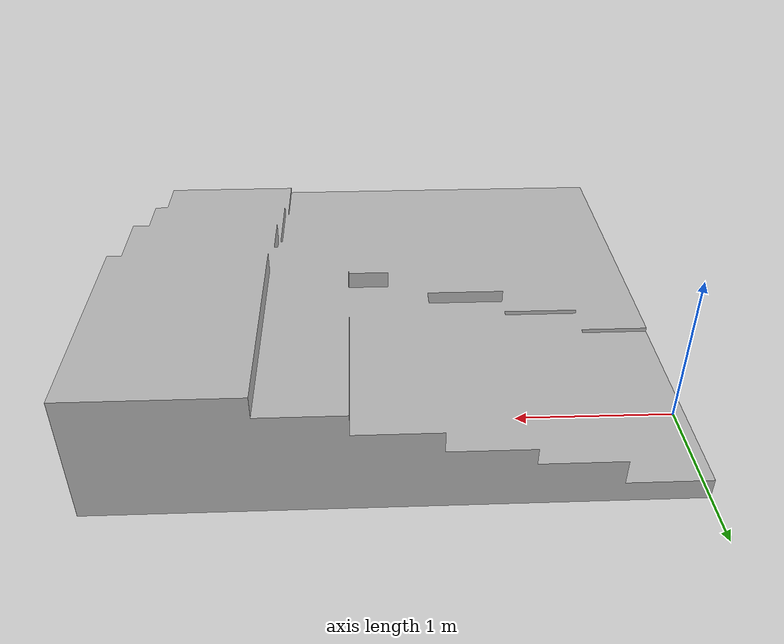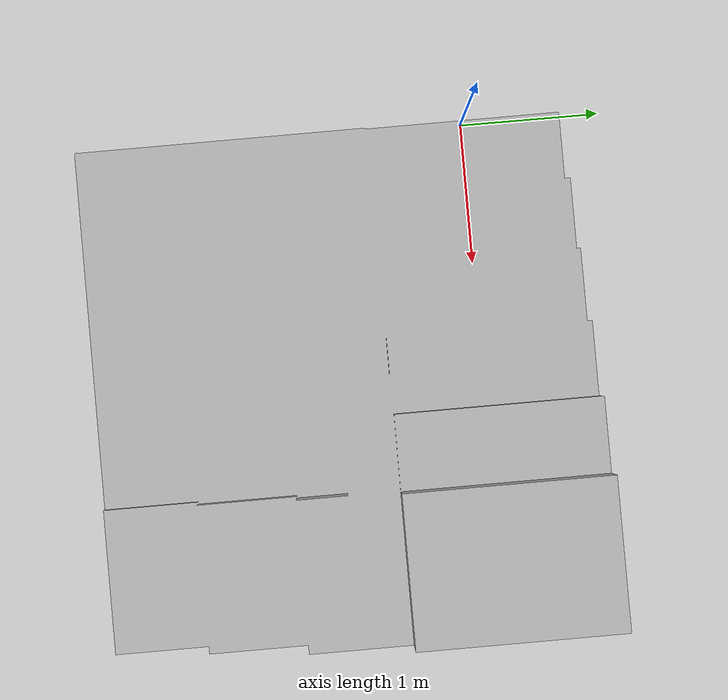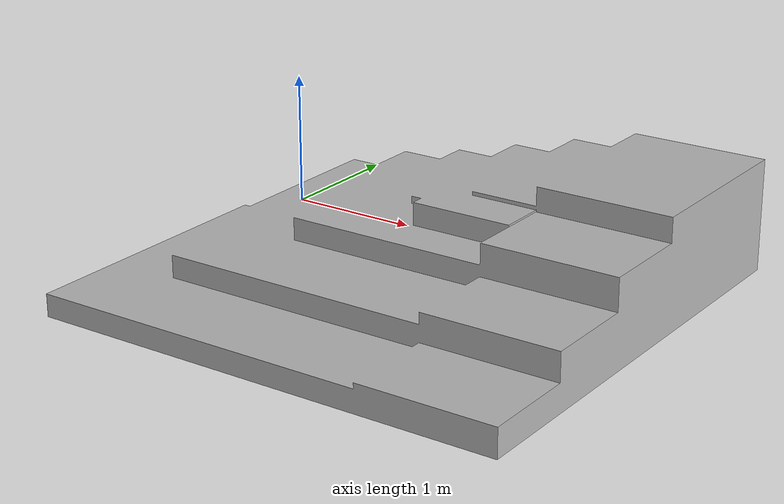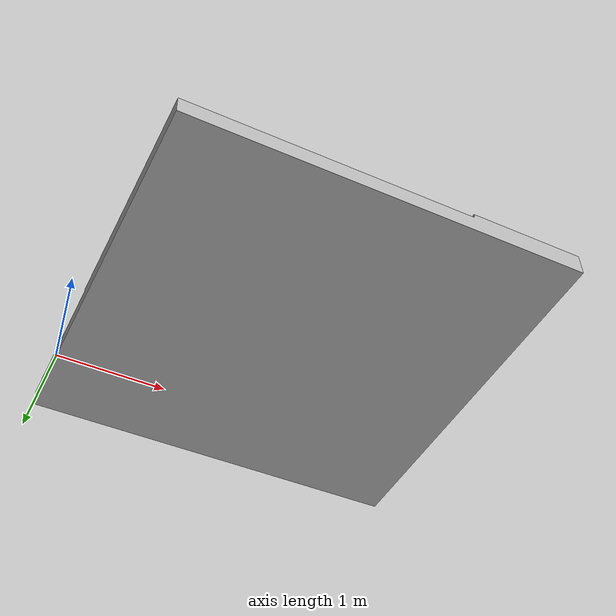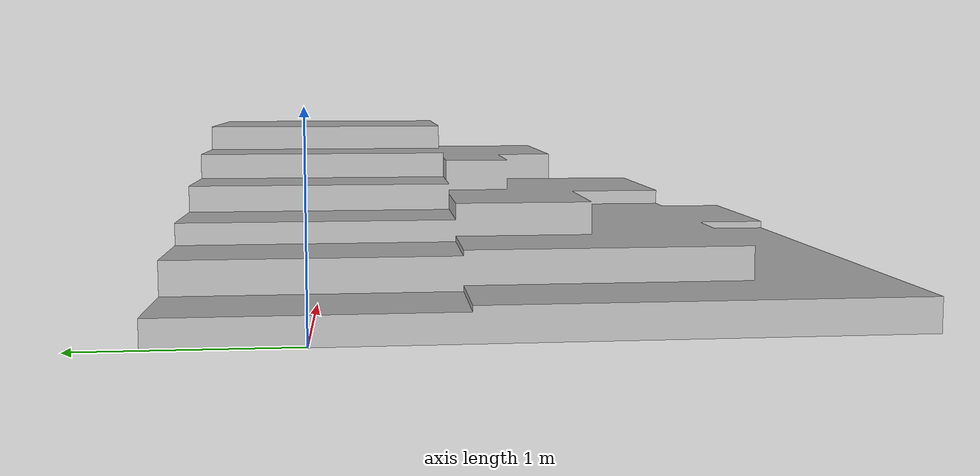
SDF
<?xml version="1.0" ?>
<sdf version="1.4">
        <model name="complex_stairs_2">
		<static>true</static>
		<link name="link">
			<pose>0 0 0 1.57 0 0</pose>
			<collision name="collision">
				<geometry>
					<mesh>
                                                <uri>model://complex_stairs_2/mesh/stairs_mirrored.dae</uri>
						<scale>1.0 1.0 1.0</scale>
					</mesh>
				</geometry>
			</collision>
			<visual name="visual">
				<geometry>
					<mesh>
                                                <uri>model://complex_stairs_2/mesh/stairs_mirrored.dae</uri>
						<scale>1.0 1.0 1.0</scale>
					</mesh>
				</geometry>
			</visual>
		</link>
	</model>
</sdf>
